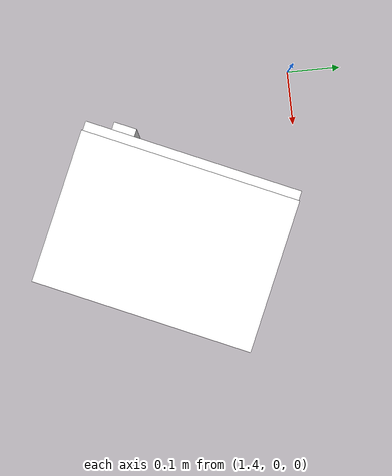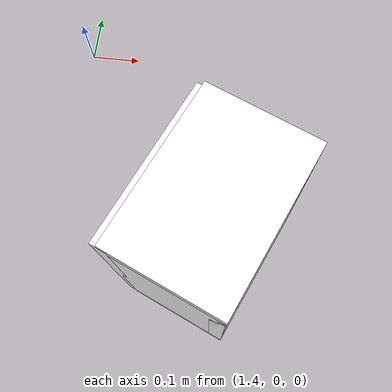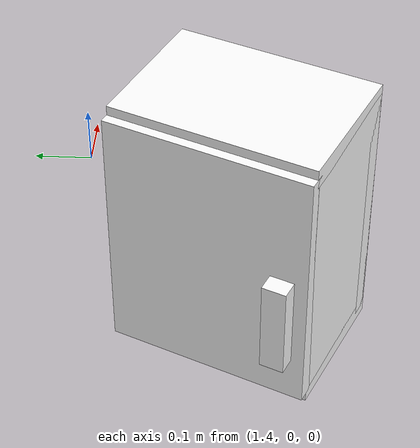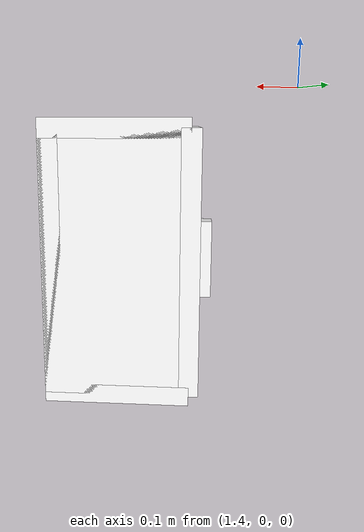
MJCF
<mujoco model="cabinet">
    <compiler angle="radian" eulerseq='zxy' />
    <option gravity = "0 0 0" />
    <option>
        <flag contact = "disable"/>
    </option>
    <statistic	extent="1.0" center="0.0 0.0 0.0"/>
    <visual>
        <map fogstart="3" fogend="5" force="0.1" znear=" 0.100000 " zfar=" 12.000000 "/>
    </visual>
    <size njmax="500" nconmax="100" />
    <actuator>
        <velocity joint="bottom_left_hinge" name="viva_revolution" kv='10'></velocity>
    </actuator>
    <asset>
        <texture builtin="flat" name="tabletex" height="32" width="32" rgb1="1 1 1" type="cube"></texture>
        <texture builtin="flat" name="objtex" height="32" width="32" rgb1="1 1 1" type="cube"></texture>
        <texture builtin="flat" name="handletex" height="32" width="32" rgb1="1 1 1" type="cube"></texture>
        <texture builtin="flat" name="wallpaper" height="32" width="32" rgb1="1 1 1" type="cube"></texture>
        <material name="geomTable" shininess="0.03" specular="0.75" texture="tabletex"></material>
        <material name="geomObj" shininess="0.03" specular="0.75" texture="objtex"></material>
        <material name="geomHandle" shininess="0.03" specular="0.75" texture="handletex"></material>
        <material name="bg" shininess="0.03" specular="0.75" texture="wallpaper"></material>
    </asset>
    <worldbody>
            <body name="cabinet_bottom" pos= " 1.699594 -0.266884 -0.662790 "  quat= " 0.205760 0.000000 0.000000 0.978603" >
                <inertial pos="0 0 0" mass="1" diaginertia="1 1 1" />
                <geom size= " 0.158336 0.228373 0.021212 "  type="box" material="geomObj" name="b"/>
                <body name="cabinet_left" pos= " 0.000000 -0.207161 0.289944 " >
                    <inertial pos="0 0 0" mass="1" diaginertia="1 1 1" />
                    <geom size= " 0.158336 0.021212 0.289944 "  type="box" material="geomObj" name="c" />
                </body>
                <body name="cabinet_right" pos= " 0.000000 0.207161 0.289944 " >
                    <inertial pos="0 0 0" mass="1" diaginertia="1 1 1" />
                    <geom size= " 0.158336 0.021212 0.289944 "  type="box" material="geomObj" name="d" />
                </body>
                <body name="cabinet_top" pos= " 0.000000 0.000000 0.579888 " >
                    <inertial pos="0 0 0" mass="1" diaginertia="1 1 1" />
                    <geom size= " 0.158336 0.228373 0.021212 "  type="box" material="geomObj" name="e"/>
                </body>
                <body name="cabinet_back" pos= " -0.137124 0.000000 0.289944 "  >
                    <inertial pos="0 0 0" mass="1" diaginertia="1 1 1" />
                    <geom size= " 0.021212 0.228373 0.289944 "  type="box" material="geomObj" name="f" />
                </body>
                <body name="cabinet_left_hinge" pos= " 0.158336 -0.228373 0.289944 " >
                    <inertial pos= " 0.000000 0.228373 0.000000 "  mass="1" diaginertia="1 1 1" />
                    <joint name="bottom_left_hinge" type="hinge" pos="0 0 0" axis="0 0 1" limited="true" range= "-2.3 0"  />
                    <geom size= " 0.021212 0.228373 0.289944 "  pos= " 0.000000 0.228373 0.000000 "  type="box" material="geomObj" name="g"/>
                    <body name="handle_link" pos= " 0.039584 0.400712 -0.075146 " >
                        <inertial pos="0 0 0" mass="1" diaginertia="1 1 1" />
                        <geom size= " 0.021044 0.026823 0.108019 "  type="box" material="geomHandle" name="h"/>
                    </body>
                </body>
            </body>
        <body name="external_camera_body_0" pos="0.0 0 0.00">
            <camera euler="-1.57 1.57 0.0" fovy=" 54.280851 " name="external_camera_0" pos="0.0 0 0"></camera>
            <inertial pos= " 0.00 0.0 0.000000 " mass="1" diaginertia="1 1 1" />
            <joint name="cam_j" pos="0.0 0 0" axis = "1 0 0" type="free" />
        </body>
    </worldbody>
</mujoco>
